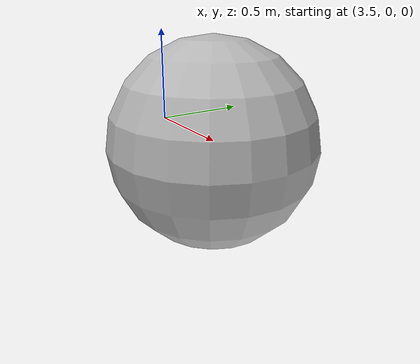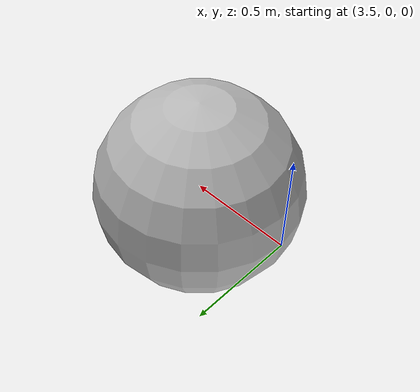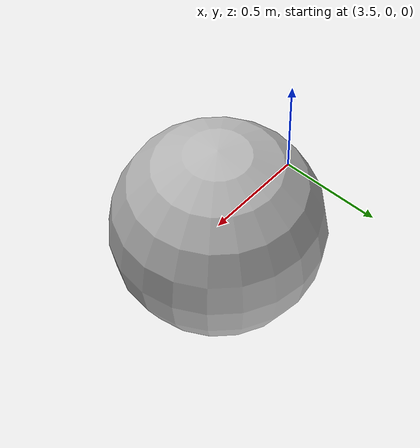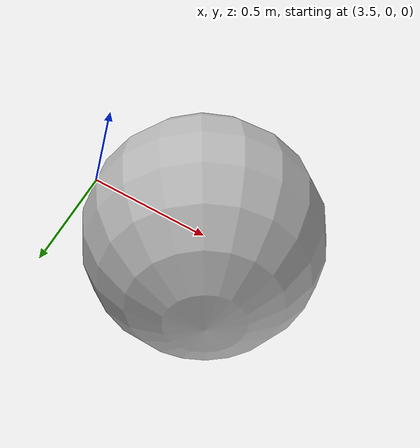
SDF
<?xml version='1.0'?>
<sdf version="1.4">
<model name="sphere">
  <pose>4 0 0 0 0 0</pose>
  <static>true</static>
    <link name="link">
      <inertial>
        <mass>1000.0</mass>
        <inertia> <!-- inertias are tricky to compute -->
          <!-- http://gazebosim.org/tutorials?tut=inertia&cat=build_robot -->
          <ixx>83</ixx>       <!-- for a box: ixx = 0.083 * mass * (y*y + z*z) -->
          <ixy>0.0</ixy>         <!-- for a box: ixy = 0 -->
          <ixz>0.0</ixz>         <!-- for a box: ixz = 0 -->
          <iyy>83</iyy>       <!-- for a box: iyy = 0.083 * mass * (x*x + z*z) -->
          <iyz>0.0</iyz>         <!-- for a box: iyz = 0 -->
          <izz>83</izz>       <!-- for a box: izz = 0.083 * mass * (x*x + y*y) -->
        </inertia>
      </inertial>
      <collision name="collision">
        <geometry>
          <sphere>
            <radius>.5</radius>
          </sphere>
        </geometry>
      </collision>
      <visual name="visual">
        <geometry>
          <sphere>
            <radius>.5</radius>
          </sphere>
        </geometry>
      </visual>
    </link>
  </model>
</sdf>
